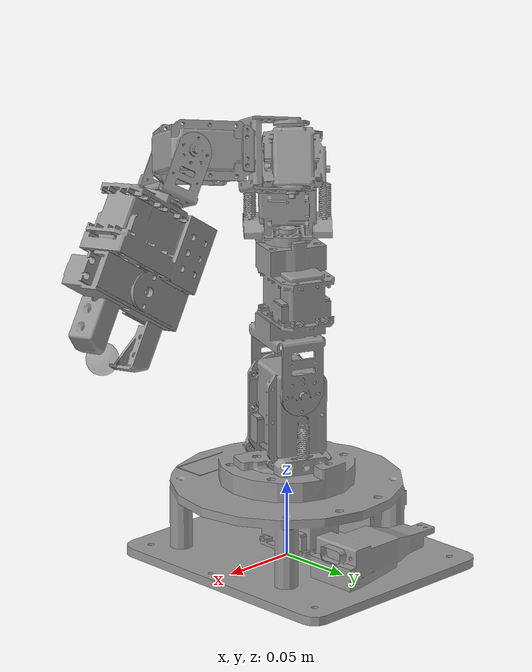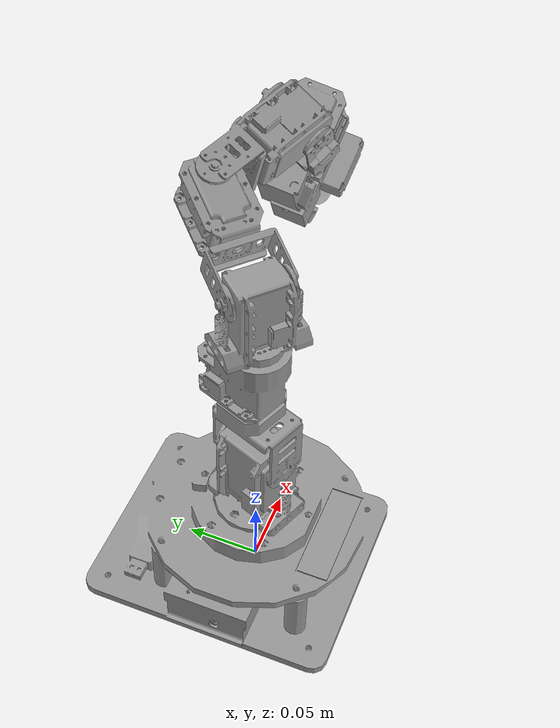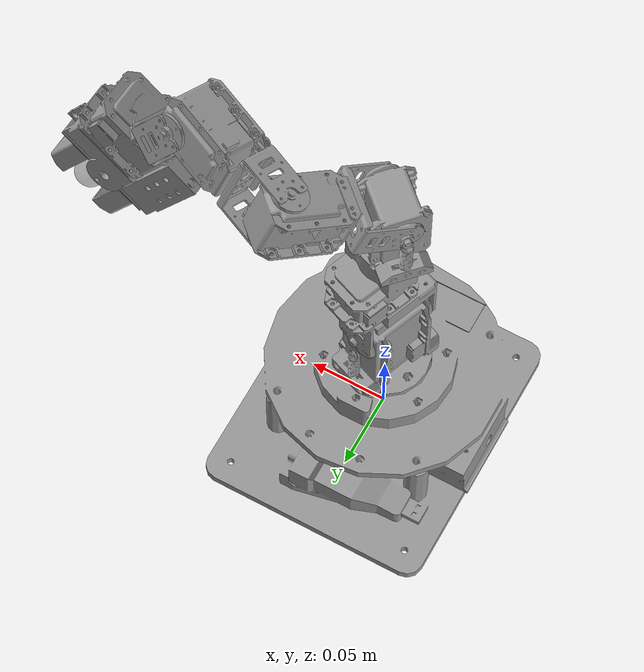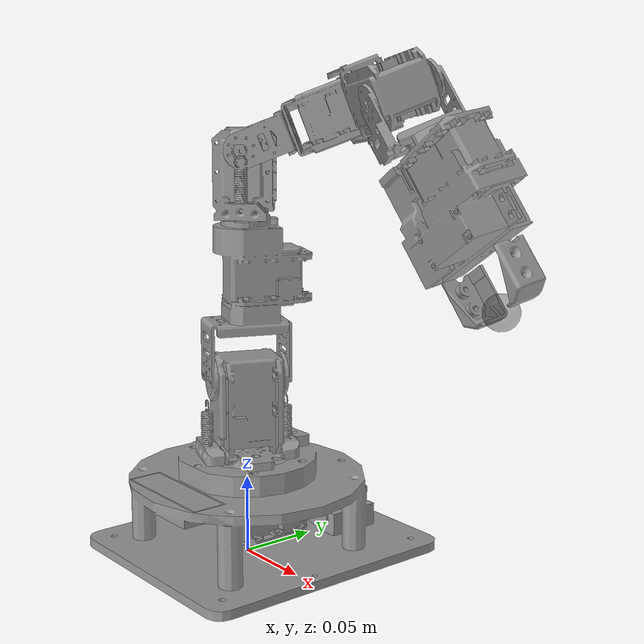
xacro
<?xml version="1.0"?>
<robot name="cyton_gamma_300" xmlns:xacro="http://www.ros.org/wiki/xacro">

	<!-- Import all Gazebo-customization elements, including Gazebo colors -->
	<xacro:include filename="$(find cyton_gamma_300_description)/urdf/cyton_gamma_300.gazebo" />
	<!-- Import Rviz colors -->
	<xacro:include filename="$(find cyton_gamma_300_description)/urdf/materials.xacro" />

	<!-- Used for fixing robot to Gazebo 'base_link' -->
	<link name="world">
	</link>

	<joint name="base_joint" type="fixed">
	  <parent link="world"/>
	  <child link="base_link"/>
	</joint>

    <xacro:macro name="cyton_gamma_300" params="virtual_ee">
        <!-- Base of robot here -->
        <!-- #######! Base Link !####################### -->
        <link name="base_link">
            <visual>
                <origin xyz="0 0 0" rpy="0 0 0"/>
                <geometry>
                    <mesh filename="package://cyton_gamma_300_description/meshes/gamma_base.dae"/>
                </geometry>
            </visual>
            <collision>
                <origin xyz="0 0.0 0.0"/>
                <geometry>
                    <mesh filename="package://cyton_gamma_300_description/meshes/gamma_base.dae"/>
                </geometry>
            </collision>
			<!-- Added for Gazebo simulation -->
			<!-- The inertia values are 'guessed' -->
			<inertial>
			  <origin xyz="0 0 0" rpy="0 0 0"/>
			  <mass value="9"/>
			  <inertia
				ixx="1.0" ixy="0.0" ixz="0.0"
				iyy="1.0" iyz="0.0"
				izz="1.0"/>
			</inertial>
        </link>
        <!-- #######! End of Base Link !################ -->

        <!-- First motor located here -->
        <!-- #######! Shoulder Roll: joint & link !##### -->
        <joint name="shoulder_roll_joint" type="revolute">
            <parent link="base_link" />
            <child link="shoulder_roll" />
            <origin xyz="0 0 0.05315" rpy="0 0 1.2" />
            <limit lower="-2.618" upper="2.618" effort="100.0" velocity="1.0" />
            <axis xyz="0 0 1" />
        </joint>

        <link name="shoulder_roll">
            <visual>
                <origin xyz="0 0 0" rpy="1.5708 0 3.14159"/>
                <geometry>
                    <mesh filename="package://cyton_gamma_300_description/meshes/Shoulder_Roll.dae"/>
                </geometry>
            </visual>
            <collision>
				<origin xyz="0 0 0" rpy="1.5708 0 3.14159" />
                <geometry>
                    <mesh filename="package://cyton_gamma_300_description/meshes/Shoulder_Roll.dae"/>
                </geometry>
            </collision>
			<!-- Added for Gazebo simulation -->
			<!-- The inertia values are 'guessed' -->
			<inertial>
			  <origin xyz="0 0 0" rpy="0 0 0"/>
			  <mass value="1"/>
			  <inertia
				ixx="1.0" ixy="0.0" ixz="0.0"
				iyy="1.0" iyz="0.0"
				izz="1.0"/>
			</inertial>
        </link>
        <!-- #######! End of Shoulder Roll !############ -->

        <!-- Second motor located here -->
        <!-- #######! Shoulder Pitch: joint & link !#### -->
        <joint name="shoulder_pitch_joint" type="revolute">
            <parent link="shoulder_roll" />
            <child link="shoulder_pitch" />
            <origin xyz="0 0 0.063" rpy="0.0 0 0" />
            <limit lower="-1.8326" upper="1.8326" effort="100.0" velocity="1.0" />
            <axis xyz="1 0 0" />
        </joint>

        <link name="shoulder_pitch">
            <visual>
                <origin xyz="0.028 0 0" rpy="0 1.5708 0" />
                <geometry>
                    <mesh filename="package://cyton_gamma_300_description/meshes/Shoulder_Pitch.dae"/>
                </geometry>
            </visual>
            <collision>
				<origin xyz="0.028 0 0" rpy="0 1.5708 0" />
                <geometry>
                    <mesh filename="package://cyton_gamma_300_description/meshes/Shoulder_Pitch.dae"/>
                </geometry>
            </collision>
			<!-- Added for Gazebo simulation -->
			<!-- The inertia values are 'guessed' -->
			<inertial>
			  <origin xyz="0 0 0" rpy="0 0 0"/>
			  <mass value="1"/>
			  <inertia
				ixx="1.0" ixy="0.0" ixz="0.0"
				iyy="1.0" iyz="0.0"
				izz="1.0"/>
			</inertial>
        </link>
        <!-- #######! End of Shoulder Pitch !########### -->

        <!-- Third motor located here -->
        <!-- #######! Elbow Roll: joint & link !######## -->
        <joint name="elbow_roll_joint" type="revolute">
            <parent link="shoulder_pitch" />
            <child link="elbow_roll" />
            <origin xyz="0 0 0.089" rpy="0 0 1.2" />
            <limit lower="-1.8326" upper="1.8326" effort="100.0" velocity="1.0" />
            <axis xyz="0 0 1" />
        </joint>

        <link name="elbow_roll">
            <visual>
                <origin xyz="0 0 0" rpy="0 0 3.92699" />
                <geometry>
                    <mesh filename="package://cyton_gamma_300_description/meshes/Elbow_Roll.dae"/>
                </geometry>
            </visual>
            <collision>
				<origin xyz="0 0 0" rpy="0 0 3.92699" />
                <geometry>
                    <mesh filename="package://cyton_gamma_300_description/meshes/Elbow_Roll.dae"/>
                </geometry>
            </collision>
			<!-- Added for Gazebo simulation -->
			<!-- The inertia values are 'guessed' -->
			<inertial>
			  <origin xyz="0 0 0" rpy="0 0 0"/>
			  <mass value="1"/>
			  <inertia
				ixx="1.0" ixy="0.0" ixz="0.0"
				iyy="1.0" iyz="0.0"
				izz="1.0"/>
			</inertial>
        </link>
        <!-- #######! End of Elbow Roll !############### -->

        <!-- Fourth motor located here -->
        <!-- #######! Elbow Pitch: joint & link !####### -->
        <joint name="elbow_pitch_joint" type="revolute">
            <parent link="elbow_roll" />
            <child link="elbow_pitch" />
            <origin xyz="0 0 0.052" rpy="1.2 0 0" />
            <limit lower="-1.8326" upper="1.8326" effort="100.0" velocity="1.0" />
            <axis xyz="1 0 0" />
        </joint>

        <link name="elbow_pitch">
            <visual>
                <!-- Not sure if this is the correct orientation. -->
                <origin xyz="0.027 0 0" rpy="1.5708 0 1.5708" />
                <geometry>
                    <mesh filename="package://cyton_gamma_300_description/meshes/Elbow_Pitch.dae"/>
                </geometry>
            </visual>
            <collision>
				<!-- Not sure if this is the correct orientation. -->
				<origin xyz="0.027 0 0" rpy="1.5708 0 1.5708" />
                <geometry>
                    <mesh filename="package://cyton_gamma_300_description/meshes/Elbow_Pitch.dae"/>
                </geometry>
            </collision>
			<!-- Added for Gazebo simulation -->
			<!-- The inertia values are 'guessed' -->
			<inertial>
			  <origin xyz="0 0 0" rpy="0 0 0"/>
			  <mass value="1"/>
			  <inertia
				ixx="1.0" ixy="0.0" ixz="0.0"
				iyy="1.0" iyz="0.0"
				izz="1.0"/>
			</inertial>
        </link>
        <!-- #######! End of Elbow Pitch !############## -->

        <!-- Fifth motor located here -->
        <!-- #######! Elbow Yaw: joint & link !######### -->
        <joint name="elbow_yaw_joint" type="revolute">
            <parent link="elbow_pitch" />
            <child link="elbow_yaw" />
            <origin xyz="0 0 0.072" rpy="0 -1.2 0" />
            <limit lower="-1.8326" upper="1.8326" effort="100.0" velocity="1.0" />
            <axis xyz="0 -1 0" />
        </joint>

        <link name="elbow_yaw">
            <visual>
                <origin xyz="0 0 0" rpy="1.5708 0 0" />
                <geometry>
                    <mesh filename="package://cyton_gamma_300_description/meshes/Elbow_Yaw.dae"/>
                </geometry>
            </visual>
            <collision>
                <origin xyz="0 0 0" rpy="1.5708 0 0" />
                <geometry>
                    <mesh filename="package://cyton_gamma_300_description/meshes/Elbow_Yaw.dae"/>
                </geometry>
            </collision>
			<!-- Added for Gazebo simulation -->
			<!-- The inertia values are 'guessed' -->
			<inertial>
			  <origin xyz="0 0 0" rpy="0 0 0"/>
			  <mass value="1"/>
			  <inertia
				ixx="1.0" ixy="0.0" ixz="0.0"
				iyy="1.0" iyz="0.0"
				izz="1.0"/>
			</inertial>
        </link>
        <!-- #######! End of Elbow Yaw !################ -->

        <!-- Sixth motor located here -->
        <!-- #######! Wrist Pitch: joint & link !####### -->
        <joint name="wrist_pitch_joint" type="revolute">
            <parent link="elbow_yaw" />
            <child link="wrist_pitch" />
            <origin xyz="0 0 0.0718" rpy="1.2 0 0" />
            <limit lower="-1.8326" upper="1.8326" effort="100.0" velocity="1.0" />
            <axis xyz="1 0 0" />
        </joint>

        <link name="wrist_pitch">
            <visual>
                <origin xyz="0.027 0 0" rpy="1.5708 0 1.5708" />
                <geometry>
                    <mesh filename="package://cyton_gamma_300_description/meshes/Wrist_Pitch.dae"/>
                </geometry>
            </visual>
            <collision>
                <origin xyz="0.027 0 0" rpy="1.5708 0 1.5708" />
                <geometry>
                    <mesh filename="package://cyton_gamma_300_description/meshes/Wrist_Pitch.dae"/>
                </geometry>
            </collision>
			<!-- Added for Gazebo simulation -->
			<!-- The inertia values are 'guessed' -->
			<inertial>
			  <origin xyz="0 0 0" rpy="0 0 0"/>
			  <mass value="1"/>
			  <inertia
				ixx="1.0" ixy="0.0" ixz="0.0"
				iyy="1.0" iyz="0.0"
				izz="1.0"/>
			</inertial>
        </link>
        <!-- #######! End of Wrist Pitch !############## -->

        <!-- Seventh motor located here -->
        <!-- #######! Wrist Roll: joint & link !######## -->
        <joint name="wrist_roll_joint" type="revolute">
            <parent link="wrist_pitch" />
            <child link="wrist_roll" />
            <origin xyz="0 0 0.051425" rpy="0 0 1.2" />
            <limit lower="-2.61799" upper="2.61799" effort="100.0" velocity="1.0" />
            <axis xyz="0 0 1" />
        </joint>

        <link name="wrist_roll">
            <visual>
                <origin xyz="0 0 0" rpy="0 3.14159 1.5708" />
                <geometry>
                    <mesh filename="package://cyton_gamma_300_description/meshes/Wrist_Roll.dae"/>
                </geometry>
            </visual>
            <collision>
                <origin xyz="0 0 0" rpy="0 3.14159 1.5708" />
                <geometry>
                    <mesh filename="package://cyton_gamma_300_description/meshes/Wrist_Roll.dae"/>
                </geometry>
            </collision>
			<!-- Added for Gazebo simulation -->
			<!-- The inertia values are 'guessed' -->
			<inertial>
			  <origin xyz="0 0 0" rpy="0 0 0"/>
			  <mass value="1"/>
			  <inertia
				ixx="1.0" ixy="0.0" ixz="0.0"
				iyy="1.0" iyz="0.0"
				izz="1.0"/>
			</inertial>
        </link>
        <!-- #######! End of Wrist Roll !############### -->

        <!-- Eigth motor located here -->
        <!-- #######! Gripper Finger 1: joint & link !## -->
        <joint name="gripper_finger1_joint" type="prismatic">
            <parent link="wrist_roll" />
            <child link="gripper_finger1" />
            <origin xyz="-0.01331 0.00485 0.077225" rpy="0 0 0" />
            <limit lower="-0.008" upper="0.008" effort="100.0" velocity="1.0" />
            <axis xyz="1 0 0" />
        </joint>
        <link name="gripper_finger1">
            <visual>
				<origin xyz="-0.0005 -0.0097 -0.031"/>
                <geometry>
                    <mesh filename="package://cyton_gamma_300_description/meshes/Gripper_Finger1.dae"/>
                </geometry>
            </visual>
            <collision>
				<origin xyz="-0.0005 -0.0097 -0.031"/>
                <geometry>
                    <mesh filename="package://cyton_gamma_300_description/meshes/Gripper_Finger1.dae"/>
                </geometry>
            </collision>
			<!-- Added for Gazebo simulation -->
			<!-- The inertia values are 'guessed' -->
			<inertial>
			  <origin xyz="0 0 0" rpy="0 0 0"/>
			  <mass value="0.5"/>
			  <inertia
				ixx="1.0" ixy="0.0" ixz="0.0"
				iyy="1.0" iyz="0.0"
				izz="1.0"/>
			</inertial>
        </link>
        <!-- #######! End of Gripper Finger 1 !######### -->

        <!-- Eighth motor located here -->
        <!-- #######! Gripper Finger 2: joint & link !## -->
        <joint name="gripper_finger2_joint" type="prismatic">
            <parent link="wrist_roll" />
            <child link="gripper_finger2" />
            <origin xyz="0.0098 0.00485 0.077225" rpy="0 0 0" />
            <limit lower="-0.008" upper="0.008" effort="100.0" velocity="1.0" />
			<mimic joint="gripper_finger1_joint" multiplier="-1"/>
            <axis xyz="1 0 0" />
        </joint>

        <link name="gripper_finger2">
            <visual>
				<origin xyz="0.0005 -0.0097 -0.031"/>
                <geometry>
                    <mesh filename="package://cyton_gamma_300_description/meshes/Gripper_Finger2.dae"/>
                </geometry>
            </visual>
            <collision>
				<origin xyz="0.0005 -0.0097 -0.031"/>
                <geometry>
                    <mesh filename="package://cyton_gamma_300_description/meshes/Gripper_Finger2.dae"/>
                </geometry>
            </collision>
			<!-- Added for Gazebo simulation -->
			<!-- The inertia values are 'guessed' -->
			<inertial>
			  <origin xyz="0 0 0" rpy="0 0 0"/>
			  <mass value="0.5"/>
			  <inertia
				ixx="1.0" ixy="0.0" ixz="0.0"
				iyy="1.0" iyz="0.0"
				izz="1.0"/>
			</inertial>
        </link>
        <!-- #######! End of Gripper Finger 2 !######### -->

        <xacro:if value="${virtual_ee}"> <!-- virtual end-effector -->
			<!-- ####! Virtual Endeffector: joint & link !## -->
            <joint name="virtual_endeffector_joint" type="fixed">
                <parent link="wrist_roll" />
                <child link="virtual_endeffector" />
                <origin xyz="-0.002316 0.0079 0.079425" rpy="0 0 0" />
            </joint>

            <link name="virtual_endeffector">
                <visual>
                    <origin xyz="0 0 0" rpy="0 0 0" />
                    <geometry>
                        <sphere radius="0.01" />
                    </geometry>
                    <material name="grey">
                        <color rgba="0.2 0.2 0.2 0.4" />
                    </material>
                </visual>
				<!-- Added for Gazebo simulation -->
				<!-- The inertia values are 'guessed' -->
				<inertial>
				  <origin xyz="0 0 0" rpy="0 0 0"/>
				  <mass value="0.03"/>
				  <inertia
					ixx="1.0" ixy="0.0" ixz="0.0"
					iyy="1.0" iyz="0.0"
					izz="1.0"/>
				</inertial>
            </link>
			<!-- #####! End of Virtual Endeffector !######## -->
        </xacro:if>
    </xacro:macro>

  <xacro:cyton_gamma_300 virtual_ee="true" />

  <xacro:macro name="include_transmission" params="transmission_type">
	<xacro:if value="${transmission_type == 'position'}">
		<xacro:include filename="$(find cyton_gamma_300_description)/urdf/transmissions_positionjointinterface.xml" />
	</xacro:if>
	<xacro:if value="${transmission_type == 'effort'}">
	   <xacro:include filename="$(find cyton_gamma_300_description)/urdf/transmissions_effortjointinterface.xml" />
	</xacro:if>
  </xacro:macro>

  <xacro:include_transmission transmission_type="position" />

</robot>
